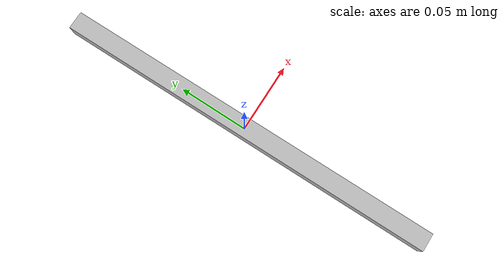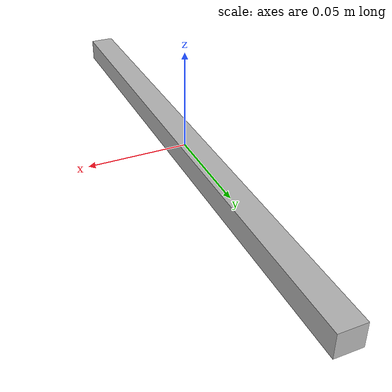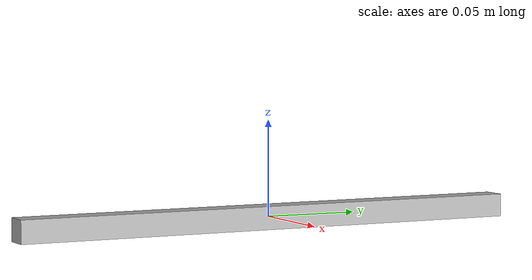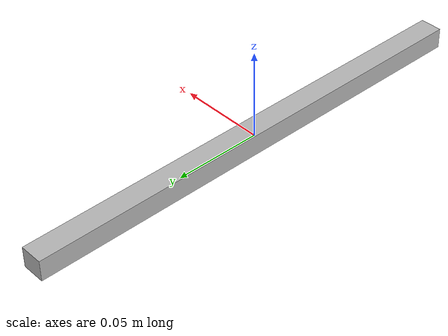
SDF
<?xml version="1.0" ?>
<sdf version="1.4">
  <model name="kinect">
    <link name="link">
      <gravity>false</gravity>
      <inertial>
        <mass>0.01</mass>
        <inertia>
          <ixx>4.15e-6</ixx>
          <ixy>0</ixy>
          <ixz>0</ixz>
          <iyy>2.407e-6</iyy>
          <iyz>0</iyz>
          <izz>2.407e-6</izz>
        </inertia>
      </inertial>
      <collision name="collision">
        <geometry>
          <box>
            <size>0.013000 0.276000 0.012000</size>
          </box>
        </geometry>
      </collision>
      <visual name="visual">
        <geometry>
          <box>
            <size>0.013000 0.276000 0.012000</size>
          </box>
        </geometry>
      </visual>
      <sensor type="depth" name="camera">
        <always_on>true</always_on>
        <visualize>true</visualize>
        <update_rate>30.0</update_rate>
        <camera>
          <horizontal_fov>1.0471975511965976</horizontal_fov>
          <image>
            <format>R8G8B8</format>
            <width>640</width>
            <height>480</height>
          </image>
          <clip>
            <near>0.05</near>
            <far>8.0</far>
          </clip>
        </camera>
        <plugin name="kinect1_camera_controller" filename="libgazebo_ros_openni_kinect.so">
            <baseline>0.2</baseline>
            <alwaysOn>true</alwaysOn>
            <updateRate>3.0</updateRate>
            <cameraName>front_camera</cameraName>
            <imageTopicName>/front_camera/rgb/image_raw</imageTopicName>
            <cameraInfoTopicName>/front_camera/rgb/camera_info</cameraInfoTopicName>
            <depthImageTopicName>/front_camera/depth/image_raw</depthImageTopicName>
            <depthImageInfoTopicName>/front_camera/depth/camera_info</depthImageInfoTopicName>
            <pointCloudTopicName>/front_camera/depth/points</pointCloudTopicName>
            <frameName>kinect1_depth_optical_frame</frameName>
            <pointCloudCutoff>0.5</pointCloudCutoff>
            <distortionK1>0.00000001</distortionK1>
            <distortionK2>0.00000001</distortionK2>
            <distortionK3>0.00000001</distortionK3>
            <distortionT1>0.00000001</distortionT1>
            <distortionT2>0.00000001</distortionT2>
            <CxPrime>0</CxPrime>
            <Cx>0</Cx>
            <Cy>0</Cy>
            <focalLength>0</focalLength>
            <hackBaseline>0</hackBaseline>
        </plugin>
      </sensor>
    </link>
    <static>1</static>
  </model>
</sdf>
